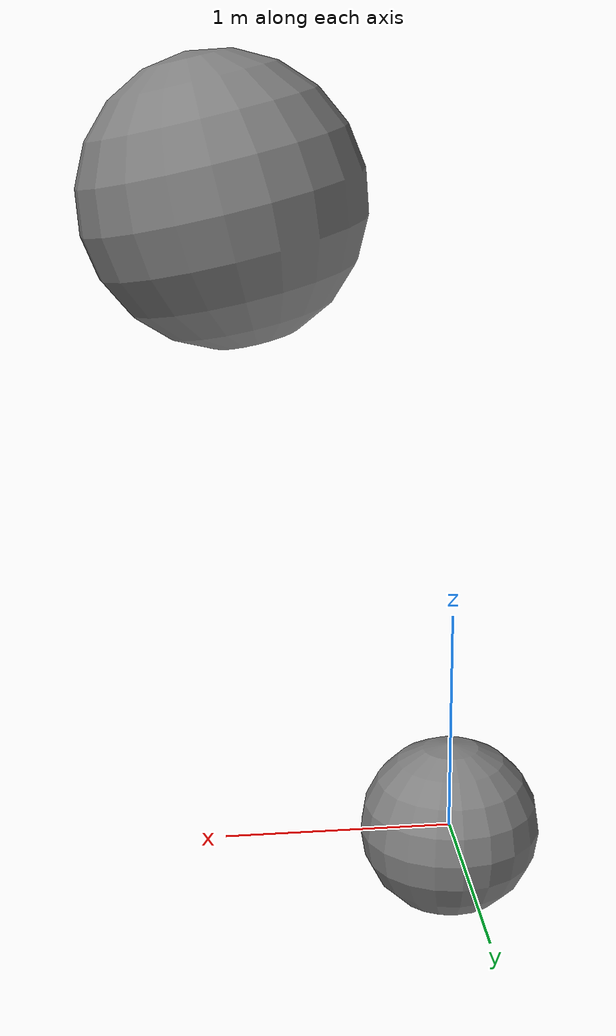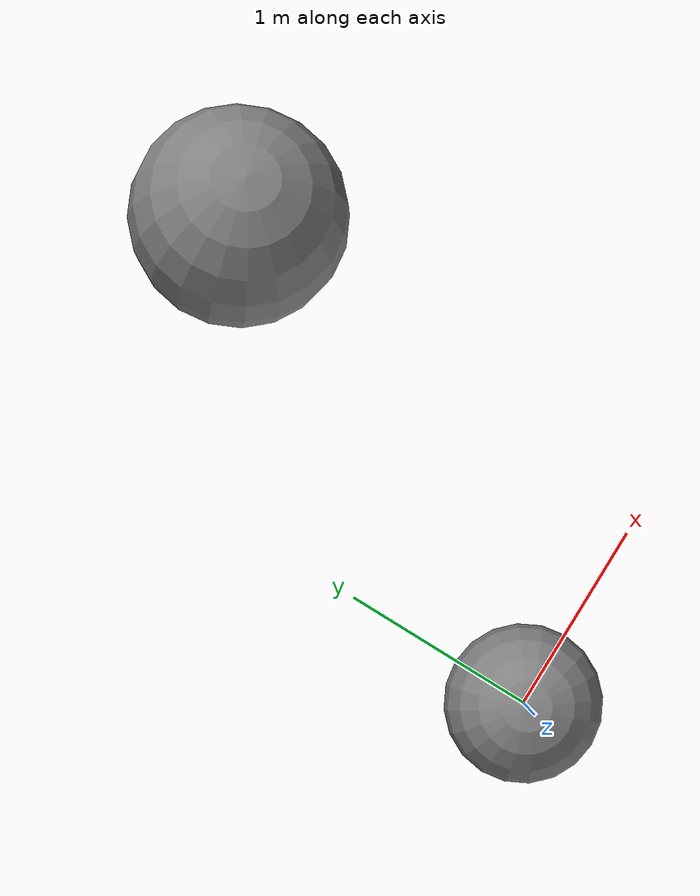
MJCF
<mujoco model="arm">
    <compiler eulerseq="XYZ"/>
    <worldbody>
        <body name="L1">
            <geom type="sphere" size="0.4"/>
            <freejoint name="freejoint"/>
            <body name="L2" pos="1 2 3" euler="5.7295779513082321 11.459155902616466 17.188733853924695">
                <geom type="sphere" size="0.4"/>
                <joint name="J1" type="hinge" axis="1 0 0"/>
            </body>
        </body>
    </worldbody>
</mujoco>
